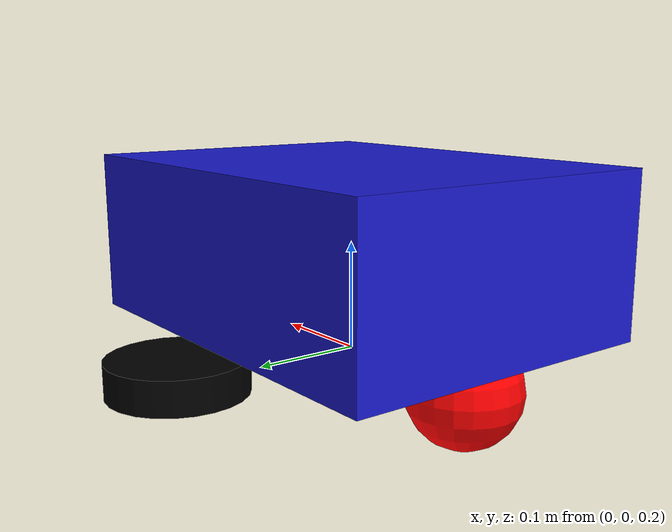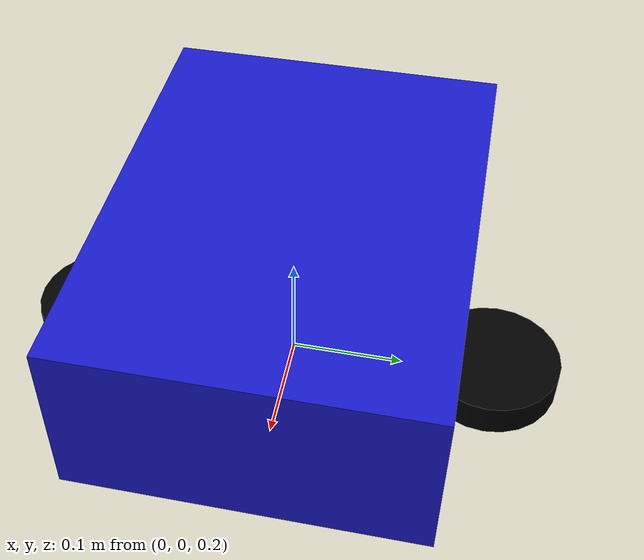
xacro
<?xml version="1.0"?>
<robot xmlns:xacro="http://www.ros.org/wiki/xacro" name="mobile_robot">

    <!-- Define constants -->
    <xacro:property name="pi" value="3.14159265359"/>

    <!-- Materials -->
    <material name="blue"><color rgba="0.1 0.1 0.8 1"/></material>
    <material name="black"><color rgba="0 0 0 1"/></material>
    <material name="red"><color rgba="1 0 0 1"/></material>

    <!-- Base Link -->
    <link name="base_link"/>

    <!-- Chassis -->
    <link name="chassis">
        <visual>
            <origin xyz="0 0 0.15" rpy="0 0 0"/>
            <geometry><box size="0.4 0.3 0.15"/></geometry>
            <material name="blue"/>
        </visual>
        <collision>
            <origin xyz="0 0 0.15"/>
            <geometry><box size="0.4 0.3 0.15"/></geometry>
        </collision>
    </link>

    <joint name="base_to_chassis" type="fixed">
        <parent link="base_link"/>
        <child link="chassis"/>
        <origin xyz="0 0 0.15"/>
    </joint>

    <!-- Left Wheel -->
    <link name="left_wheel">
        <visual>
            <origin xyz="0 0 0" rpy="0 0 0"/>
            <geometry><cylinder radius="0.06" length="0.03"/></geometry>
            <material name="black"/>
        </visual>
        <collision>
            <origin xyz="0 0 0"/>
            <geometry><cylinder radius="0.06" length="0.03"/></geometry>
        </collision>
    </link>

    <joint name="left_wheel_joint" type="continuous">
        <parent link="chassis"/>
        <child link="left_wheel"/>
        <origin xyz="0 0.18 0.06" rpy="0 0 0"/>
        <axis xyz="0 1 0"/>
    </joint>

    <!-- Right Wheel -->
    <link name="right_wheel">
        <visual>
            <origin xyz="0 0 0" rpy="0 0 0"/>
            <geometry><cylinder radius="0.06" length="0.03"/></geometry>
            <material name="black"/>
        </visual>
        <collision>
            <origin xyz="0 0 0"/>
            <geometry><cylinder radius="0.06" length="0.03"/></geometry>
        </collision>
    </link>

    <joint name="right_wheel_joint" type="continuous">
        <parent link="chassis"/>
        <child link="right_wheel"/>
        <origin xyz="0 -0.18 0.06" rpy="0 0 0"/>
        <axis xyz="0 1 0"/>
    </joint>

    <!-- Caster Wheel -->
    <link name="caster_wheel">
        <visual>
            <origin xyz="0 0 0"/>
            <geometry><sphere radius="0.05"/></geometry>
            <material name="red"/>
        </visual>
        <collision>
            <origin xyz="0 0 0"/>
            <geometry><sphere radius="0.05"/></geometry>
        </collision>
    </link>

    <joint name="caster_joint" type="fixed">
        <parent link="chassis"/>
        <child link="caster_wheel"/>
        <origin xyz="-0.15 0 0.05"/>
    </joint>

</robot>
